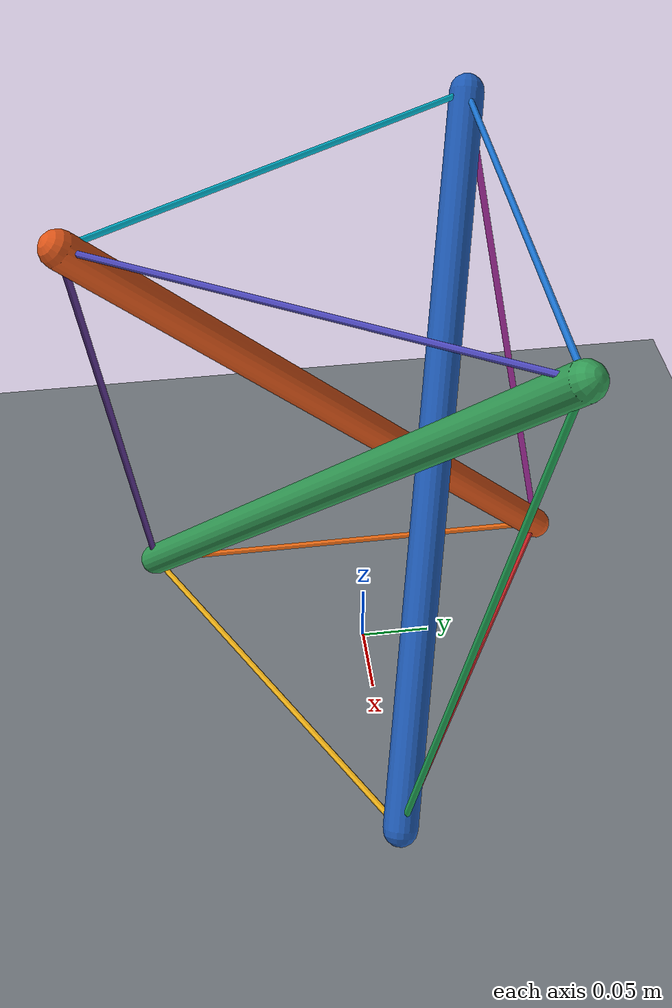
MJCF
<mujoco model="cable_demo_three_strut_nine_cable_tensegrity">
  <compiler autolimits="true" angle="radian" />
  <option timestep="0.0005" gravity="0 0 -9.81" integrator="implicitfast" iterations="100" tolerance="1e-10" />
  <statistic center="0 0 0.19" extent="0.62" />

  <extension>
    <plugin plugin="mujoco.cable.unilateral">
      <instance name="cable_bottom_01">
        <config key="route_mode" value="native" />
        <config key="stiffness" value="1500" />
        <config key="damping" value="4" />
        <config key="slack" value="0" />
        <config key="home_length" value="auto_initial" />
        <config key="pretension_offset" value="0.00096810" />
        <config key="max_tension" value="80" />
        <config key="control_timeconstant" value="0.04" />
        <config key="max_contraction_rate" value="0.025" />
      </instance>
      <instance name="cable_bottom_12">
        <config key="route_mode" value="native" />
        <config key="stiffness" value="1500" />
        <config key="damping" value="4" />
        <config key="slack" value="0" />
        <config key="home_length" value="auto_initial" />
        <config key="pretension_offset" value="0.00096810" />
        <config key="max_tension" value="80" />
        <config key="control_timeconstant" value="0.04" />
        <config key="max_contraction_rate" value="0.025" />
      </instance>
      <instance name="cable_bottom_20">
        <config key="route_mode" value="native" />
        <config key="stiffness" value="1500" />
        <config key="damping" value="4" />
        <config key="slack" value="0" />
        <config key="home_length" value="auto_initial" />
        <config key="pretension_offset" value="0.00096810" />
        <config key="max_tension" value="80" />
        <config key="control_timeconstant" value="0.04" />
        <config key="max_contraction_rate" value="0.025" />
      </instance>
      <instance name="cable_top_01">
        <config key="route_mode" value="native" />
        <config key="stiffness" value="1500" />
        <config key="damping" value="4" />
        <config key="slack" value="0" />
        <config key="home_length" value="auto_initial" />
        <config key="pretension_offset" value="0.00096810" />
        <config key="max_tension" value="80" />
        <config key="control_timeconstant" value="0.04" />
        <config key="max_contraction_rate" value="0.025" />
      </instance>
      <instance name="cable_top_12">
        <config key="route_mode" value="native" />
        <config key="stiffness" value="1500" />
        <config key="damping" value="4" />
        <config key="slack" value="0" />
        <config key="home_length" value="auto_initial" />
        <config key="pretension_offset" value="0.00096810" />
        <config key="max_tension" value="80" />
        <config key="control_timeconstant" value="0.04" />
        <config key="max_contraction_rate" value="0.025" />
      </instance>
      <instance name="cable_top_20">
        <config key="route_mode" value="native" />
        <config key="stiffness" value="1500" />
        <config key="damping" value="4" />
        <config key="slack" value="0" />
        <config key="home_length" value="auto_initial" />
        <config key="pretension_offset" value="0.00096810" />
        <config key="max_tension" value="80" />
        <config key="control_timeconstant" value="0.04" />
        <config key="max_contraction_rate" value="0.025" />
      </instance>
      <instance name="cable_cross_00">
        <config key="route_mode" value="native" />
        <config key="stiffness" value="1500" />
        <config key="damping" value="4" />
        <config key="slack" value="0" />
        <config key="home_length" value="auto_initial" />
        <config key="pretension_offset" value="0.00200000" />
        <config key="max_tension" value="80" />
        <config key="control_timeconstant" value="0.04" />
        <config key="max_contraction_rate" value="0.025" />
      </instance>
      <instance name="cable_cross_11">
        <config key="route_mode" value="native" />
        <config key="stiffness" value="1500" />
        <config key="damping" value="4" />
        <config key="slack" value="0" />
        <config key="home_length" value="auto_initial" />
        <config key="pretension_offset" value="0.00200000" />
        <config key="max_tension" value="80" />
        <config key="control_timeconstant" value="0.04" />
        <config key="max_contraction_rate" value="0.025" />
      </instance>
      <instance name="cable_cross_22">
        <config key="route_mode" value="native" />
        <config key="stiffness" value="1500" />
        <config key="damping" value="4" />
        <config key="slack" value="0" />
        <config key="home_length" value="auto_initial" />
        <config key="pretension_offset" value="0.00200000" />
        <config key="max_tension" value="80" />
        <config key="control_timeconstant" value="0.04" />
        <config key="max_contraction_rate" value="0.025" />
      </instance>
    </plugin>
  </extension>

  <default>
    <joint damping="0.02" />
    <!-- Bit 2 struts collide with the bit 1 ground, but not with each other. -->
    <geom contype="2" conaffinity="1" friction="0.9 0.02 0.005" solref="0.01 1" solimp="0.9 0.95 0.001" />
    <site type="sphere" size="0.010" />
  </default>

  <asset>
    <texture name="tex_ground_grid" type="2d" builtin="checker"
             rgb1="0.16 0.18 0.20" rgb2="0.72 0.75 0.78" width="512" height="512" />
    <material name="mat_ground_grid" texture="tex_ground_grid" texrepeat="16 16"
              texuniform="true" reflectance="0.05" />
    <material name="mat_strut_0" rgba="0.12 0.36 0.72 1" />
    <material name="mat_strut_1" rgba="0.88 0.34 0.10 1" />
    <material name="mat_strut_2" rgba="0.20 0.62 0.34 1" />
  </asset>

  <worldbody>
    <light name="key" pos="0.2 -1.1 1.3" dir="-0.1 0.8 -1" />
    <light name="fill" pos="-0.8 0.4 0.8" dir="0.8 -0.3 -0.5" diffuse="0.35 0.35 0.35" />
    <geom name="grid_ground" type="plane" pos="0 0 0" size="1.2 1.2 0.05"
          material="mat_ground_grid" contype="1" conaffinity="2" />

    <!-- Strut 0: B0 -> T1. Local endpoints are symmetric about the body COM. -->
    <body name="strut_0" pos="0.0120577 0.045 0.192">
      <joint name="strut_0_free" type="free" />
      <geom name="strut_0_capsule" type="capsule"
            fromto="0.1679423 -0.045 -0.18 -0.1679423 0.045 0.18"
            size="0.012" density="500" material="mat_strut_0" />
      <site name="node_b0" pos="0.1679423 -0.045 -0.18" rgba="0.95 0.20 0.10 1" />
      <site name="node_t1" pos="-0.1679423 0.045 0.18" rgba="0.10 0.65 0.95 1" />
    </body>

    <!-- Strut 1: B1 -> T2. -->
    <body name="strut_1" pos="-0.045 -0.0120577 0.192">
      <joint name="strut_1_free" type="free" />
      <geom name="strut_1_capsule" type="capsule"
            fromto="-0.045 0.1679423 -0.18 0.045 -0.1679423 0.18"
            size="0.012" density="500" material="mat_strut_1" />
      <site name="node_b1" pos="-0.045 0.1679423 -0.18" rgba="0.95 0.20 0.10 1" />
      <site name="node_t2" pos="0.045 -0.1679423 0.18" rgba="0.10 0.65 0.95 1" />
    </body>

    <!-- Strut 2: B2 -> T0. -->
    <body name="strut_2" pos="0.0329423 -0.0329423 0.192">
      <joint name="strut_2_free" type="free" />
      <geom name="strut_2_capsule" type="capsule"
            fromto="-0.1229423 -0.1229423 -0.18 0.1229423 0.1229423 0.18"
            size="0.012" density="500" material="mat_strut_2" />
      <site name="node_b2" pos="-0.1229423 -0.1229423 -0.18" rgba="0.95 0.20 0.10 1" />
      <site name="node_t0" pos="0.1229423 0.1229423 0.18" rgba="0.10 0.65 0.95 1" />
    </body>
  </worldbody>

  <tendon>
    <!-- Bottom ring: B0-B1-B2-B0. -->
    <spatial name="bottom_01" width="0.0022" rgba="0.84 0.15 0.16 0.95"><site site="node_b0" /><site site="node_b1" /></spatial>
    <spatial name="bottom_12" width="0.0022" rgba="0.95 0.43 0.08 0.95"><site site="node_b1" /><site site="node_b2" /></spatial>
    <spatial name="bottom_20" width="0.0022" rgba="0.92 0.68 0.08 0.95"><site site="node_b2" /><site site="node_b0" /></spatial>

    <!-- Top ring: T0-T1-T2-T0. -->
    <spatial name="top_01" width="0.0022" rgba="0.10 0.45 0.82 0.95"><site site="node_t0" /><site site="node_t1" /></spatial>
    <spatial name="top_12" width="0.0022" rgba="0.00 0.68 0.78 0.95"><site site="node_t1" /><site site="node_t2" /></spatial>
    <spatial name="top_20" width="0.0022" rgba="0.32 0.30 0.78 0.95"><site site="node_t2" /><site site="node_t0" /></spatial>

    <!-- Cross-layer cables: B_i-T_i. The struts use B_i-T_(i+1). -->
    <spatial name="cross_00" width="0.0024" rgba="0.12 0.62 0.32 0.95"><site site="node_b0" /><site site="node_t0" /></spatial>
    <spatial name="cross_11" width="0.0024" rgba="0.72 0.20 0.68 0.95"><site site="node_b1" /><site site="node_t1" /></spatial>
    <spatial name="cross_22" width="0.0024" rgba="0.30 0.16 0.48 0.95"><site site="node_b2" /><site site="node_t2" /></spatial>
  </tendon>

  <!-- Controls are held at zero in this passive tensegrity demo. Each plugin
       actuator is the native tendon-force transmission required by route_mode=native. -->
  <actuator>
    <plugin name="act_bottom_01" tendon="bottom_01" instance="cable_bottom_01" ctrlrange="0 0.06" />
    <plugin name="act_bottom_12" tendon="bottom_12" instance="cable_bottom_12" ctrlrange="0 0.06" />
    <plugin name="act_bottom_20" tendon="bottom_20" instance="cable_bottom_20" ctrlrange="0 0.06" />
    <plugin name="act_top_01" tendon="top_01" instance="cable_top_01" ctrlrange="0 0.06" />
    <plugin name="act_top_12" tendon="top_12" instance="cable_top_12" ctrlrange="0 0.06" />
    <plugin name="act_top_20" tendon="top_20" instance="cable_top_20" ctrlrange="0 0.06" />
    <plugin name="act_cross_00" tendon="cross_00" instance="cable_cross_00" ctrlrange="0 0.06" />
    <plugin name="act_cross_11" tendon="cross_11" instance="cable_cross_11" ctrlrange="0 0.06" />
    <plugin name="act_cross_22" tendon="cross_22" instance="cable_cross_22" ctrlrange="0 0.06" />
  </actuator>

  <sensor>
    <plugin name="state_bottom_01" instance="cable_bottom_01" />
    <plugin name="state_bottom_12" instance="cable_bottom_12" />
    <plugin name="state_bottom_20" instance="cable_bottom_20" />
    <plugin name="state_top_01" instance="cable_top_01" />
    <plugin name="state_top_12" instance="cable_top_12" />
    <plugin name="state_top_20" instance="cable_top_20" />
    <plugin name="state_cross_00" instance="cable_cross_00" />
    <plugin name="state_cross_11" instance="cable_cross_11" />
    <plugin name="state_cross_22" instance="cable_cross_22" />
  </sensor>
</mujoco>
